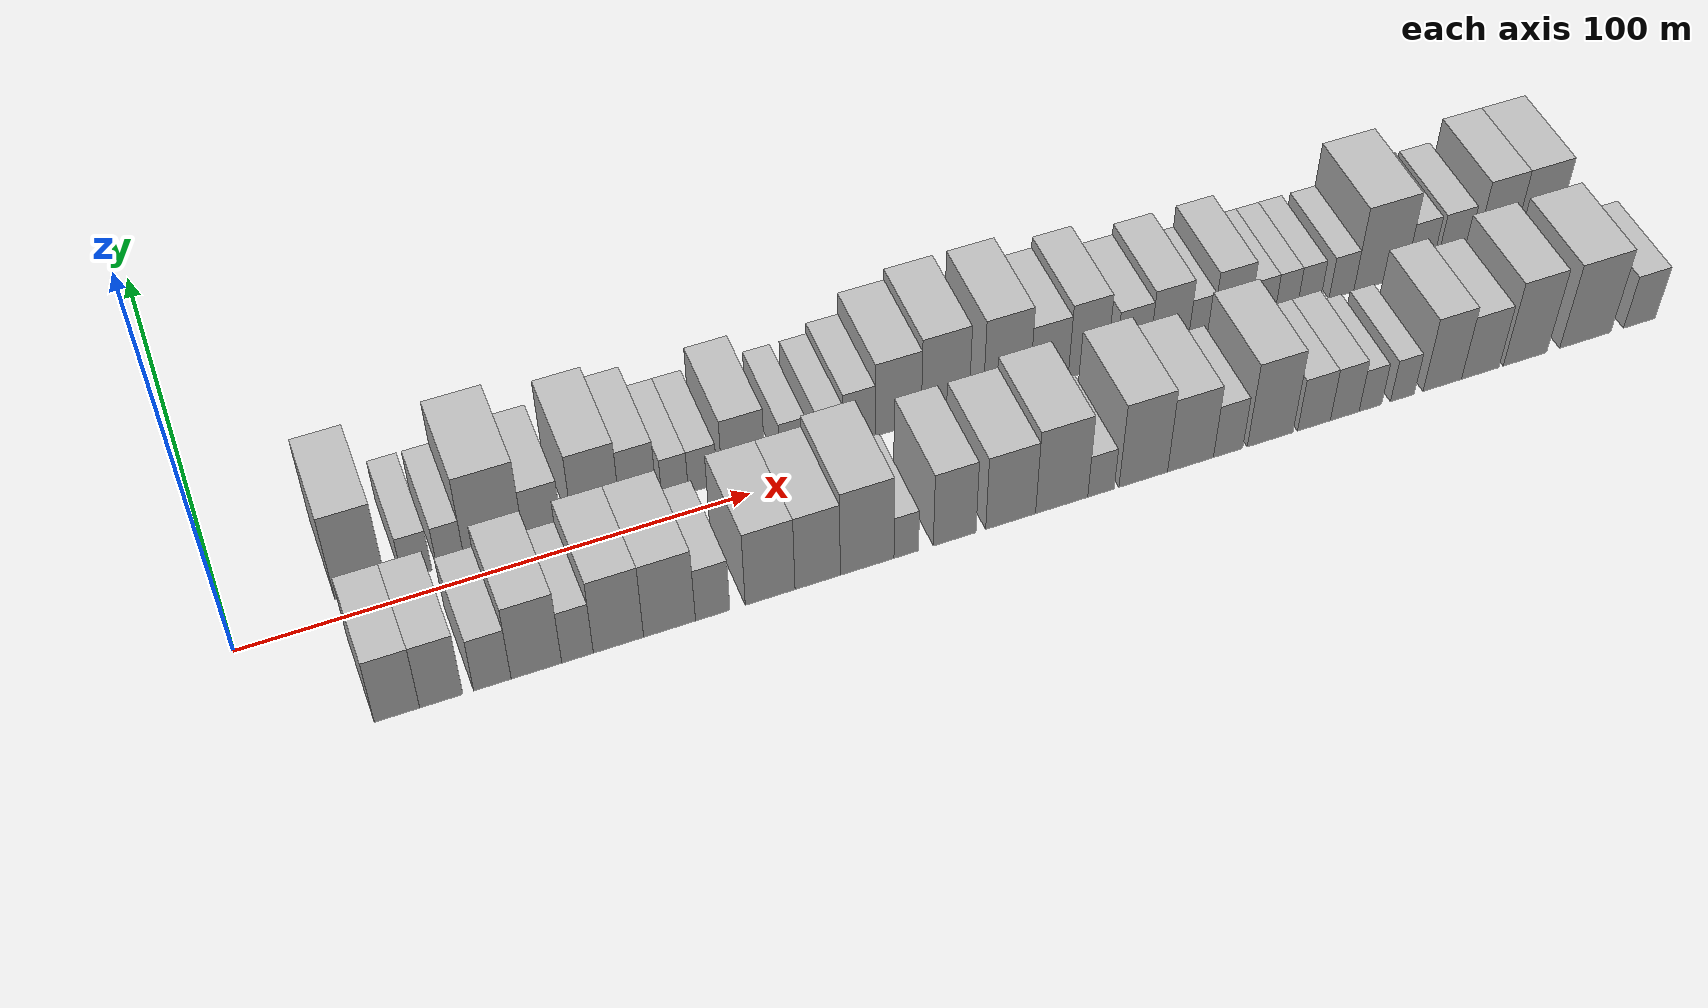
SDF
<sdf version="1.6">
 <world name="default">
  <scene>
   <sky><clouds><speed>12</speed></clouds></sky>
   <ambient>0.4 0.4 0.4 1</ambient>
   <background>0.7 0.7 0.7 1</background>
   <shadows>1</shadows>
  </scene>
  <gravity>0 0 -9.8066</gravity>
  <magnetic_field>6e-06 2.3e-05 -4.2e-05</magnetic_field>
  <physics default="0" name="default_physics" type="ode">
   <ode>
    <solver>
     <type>quick</type>
     <iters>10</iters>
     <sor>1.0</sor>
     <use_dynamic_moi_rescaling>0</use_dynamic_moi_rescaling>
    </solver>
    <constraints>
     <cfm>0</cfm>
     <erp>0.2</erp>
     <contact_max_correcting_vel>100</contact_max_correcting_vel>
     <contact_surface_layer>0.001</contact_surface_layer>
    </constraints>
   </ode>
   <max_step_size>0.004</max_step_size>
   <real_time_factor>1</real_time_factor>
   <real_time_update_rate>250</real_time_update_rate>
  </physics>
  <light name="sun" type="directional">
   <pose>0 0 10 0 0 0</pose>
   <diffuse>0.8 0.8 0.8 1</diffuse>
   <specular>0.2 0.2 0.2 1</specular>
   <attenuation>
    <range>1000</range>
    <constant>0.9</constant>
    <linear>0.01</linear>
    <quadratic>0.001</quadratic>
   </attenuation>
   <direction>-0.5 0.1 -0.9</direction>
  </light>
  <model name="building_1">
   <static>1</static>
   <pose>24.8874 14.5000 0 0.000000 0.000000 1.570796</pose>
   <link name="link">
    <pose>0 0 12.00 0 0 0</pose>
    <collision name="collision"><geometry><box><size>20.0000 9.7747 24.0000</size></box></geometry></collision>
    <visual name="visual">
     <cast_shadows>0</cast_shadows>
     <geometry><box><size>20.0000 9.7747 24.0000</size></box></geometry>
     <material>
      <script>
       <uri>model://HANNAS_wall/materials/scripts</uri>
       <uri>model://HANNAS_wall/materials/textures</uri>
       <name>vrc/HANNAS_wall</name>
      </script>
     </material>
    </visual>
   </link>
  </model>
  <model name="building_2">
   <static>1</static>
   <pose>35.6355 14.5000 0 0.000000 0.000000 1.570796</pose>
   <link name="link">
    <pose>0 0 6.00 0 0 0</pose>
    <collision name="collision"><geometry><box><size>20.0000 5.7216 12.0000</size></box></geometry></collision>
    <visual name="visual">
     <cast_shadows>0</cast_shadows>
     <geometry><box><size>20.0000 5.7216 12.0000</size></box></geometry>
     <material>
      <script>
       <uri>model://HANNAS_wall/materials/scripts</uri>
       <uri>model://HANNAS_wall/materials/textures</uri>
       <name>vrc/HANNAS_wall</name>
      </script>
     </material>
    </visual>
   </link>
  </model>
  <model name="building_3">
   <static>1</static>
   <pose>42.1406 14.5000 0 0.000000 0.000000 1.570796</pose>
   <link name="link">
    <pose>0 0 6.00 0 0 0</pose>
    <collision name="collision"><geometry><box><size>20.0000 5.2885 12.0000</size></box></geometry></collision>
    <visual name="visual">
     <cast_shadows>0</cast_shadows>
     <geometry><box><size>20.0000 5.2885 12.0000</size></box></geometry>
     <material>
      <script>
       <uri>model://HANNAS_wall/materials/scripts</uri>
       <uri>model://HANNAS_wall/materials/textures</uri>
       <name>vrc/HANNAS_wall</name>
      </script>
     </material>
    </visual>
   </link>
  </model>
  <model name="building_4">
   <static>1</static>
   <pose>50.5734 14.5000 0 0.000000 0.000000 1.570796</pose>
   <link name="link">
    <pose>0 0 12.00 0 0 0</pose>
    <collision name="collision"><geometry><box><size>20.0000 11.5771 24.0000</size></box></geometry></collision>
    <visual name="visual">
     <cast_shadows>0</cast_shadows>
     <geometry><box><size>20.0000 11.5771 24.0000</size></box></geometry>
     <material>
      <script>
       <uri>model://HANNAS_wall/materials/scripts</uri>
       <uri>model://HANNAS_wall/materials/textures</uri>
       <name>vrc/HANNAS_wall</name>
      </script>
     </material>
    </visual>
   </link>
  </model>
  <model name="building_5">
   <static>1</static>
   <pose>60.1083 14.5000 0 0.000000 0.000000 1.570796</pose>
   <link name="link">
    <pose>0 0 7.50 0 0 0</pose>
    <collision name="collision"><geometry><box><size>20.0000 7.4927 15.0000</size></box></geometry></collision>
    <visual name="visual">
     <cast_shadows>0</cast_shadows>
     <geometry><box><size>20.0000 7.4927 15.0000</size></box></geometry>
     <material>
      <script>
       <uri>model://HANNAS_wall/materials/scripts</uri>
       <uri>model://HANNAS_wall/materials/textures</uri>
       <name>vrc/HANNAS_wall</name>
      </script>
     </material>
    </visual>
   </link>
  </model>
  <model name="building_6">
   <static>1</static>
   <pose>70.6198 14.5000 0 0.000000 0.000000 1.570796</pose>
   <link name="link">
    <pose>0 0 10.50 0 0 0</pose>
    <collision name="collision"><geometry><box><size>20.0000 9.5303 21.0000</size></box></geometry></collision>
    <visual name="visual">
     <cast_shadows>0</cast_shadows>
     <geometry><box><size>20.0000 9.5303 21.0000</size></box></geometry>
     <material>
      <script>
       <uri>model://HANNAS_wall/materials/scripts</uri>
       <uri>model://HANNAS_wall/materials/textures</uri>
       <name>vrc/HANNAS_wall</name>
      </script>
     </material>
    </visual>
   </link>
  </model>
  <model name="building_7">
   <static>1</static>
   <pose>79.0629 14.5000 0 0.000000 0.000000 1.570796</pose>
   <link name="link">
    <pose>0 0 9.00 0 0 0</pose>
    <collision name="collision"><geometry><box><size>20.0000 7.3559 18.0000</size></box></geometry></collision>
    <visual name="visual">
     <cast_shadows>0</cast_shadows>
     <geometry><box><size>20.0000 7.3559 18.0000</size></box></geometry>
     <material>
      <script>
       <uri>model://HANNAS_wall/materials/scripts</uri>
       <uri>model://HANNAS_wall/materials/textures</uri>
       <name>vrc/HANNAS_wall</name>
      </script>
     </material>
    </visual>
   </link>
  </model>
  <model name="building_8">
   <static>1</static>
   <pose>86.3998 14.5000 0 0.000000 0.000000 1.570796</pose>
   <link name="link">
    <pose>0 0 6.00 0 0 0</pose>
    <collision name="collision"><geometry><box><size>20.0000 5.3179 12.0000</size></box></geometry></collision>
    <visual name="visual">
     <cast_shadows>0</cast_shadows>
     <geometry><box><size>20.0000 5.3179 12.0000</size></box></geometry>
     <material>
      <script>
       <uri>model://HANNAS_wall/materials/scripts</uri>
       <uri>model://HANNAS_wall/materials/textures</uri>
       <name>vrc/HANNAS_wall</name>
      </script>
     </material>
    </visual>
   </link>
  </model>
  <model name="building_9">
   <static>1</static>
   <pose>91.9823 14.5000 0 0.000000 0.000000 1.570796</pose>
   <link name="link">
    <pose>0 0 6.00 0 0 0</pose>
    <collision name="collision"><geometry><box><size>20.0000 5.8471 12.0000</size></box></geometry></collision>
    <visual name="visual">
     <cast_shadows>0</cast_shadows>
     <geometry><box><size>20.0000 5.8471 12.0000</size></box></geometry>
     <material>
      <script>
       <uri>model://HANNAS_wall/materials/scripts</uri>
       <uri>model://HANNAS_wall/materials/textures</uri>
       <name>vrc/HANNAS_wall</name>
      </script>
     </material>
    </visual>
   </link>
  </model>
  <model name="building_10">
   <static>1</static>
   <pose>100.2725 14.5000 0 0.000000 0.000000 1.570796</pose>
   <link name="link">
    <pose>0 0 9.00 0 0 0</pose>
    <collision name="collision"><geometry><box><size>20.0000 8.7333 18.0000</size></box></geometry></collision>
    <visual name="visual">
     <cast_shadows>0</cast_shadows>
     <geometry><box><size>20.0000 8.7333 18.0000</size></box></geometry>
     <material>
      <script>
       <uri>model://HANNAS_wall/materials/scripts</uri>
       <uri>model://HANNAS_wall/materials/textures</uri>
       <name>vrc/HANNAS_wall</name>
      </script>
     </material>
    </visual>
   </link>
  </model>
  <model name="building_11">
   <static>1</static>
   <pose>110.4172 14.5000 0 0.000000 0.000000 1.570796</pose>
   <link name="link">
    <pose>0 0 6.00 0 0 0</pose>
    <collision name="collision"><geometry><box><size>20.0000 5.5562 12.0000</size></box></geometry></collision>
    <visual name="visual">
     <cast_shadows>0</cast_shadows>
     <geometry><box><size>20.0000 5.5562 12.0000</size></box></geometry>
     <material>
      <script>
       <uri>model://HANNAS_wall/materials/scripts</uri>
       <uri>model://HANNAS_wall/materials/textures</uri>
       <name>vrc/HANNAS_wall</name>
      </script>
     </material>
    </visual>
   </link>
  </model>
  <model name="building_12">
   <static>1</static>
   <pose>118.0093 14.5000 0 0.000000 0.000000 1.570796</pose>
   <link name="link">
    <pose>0 0 6.00 0 0 0</pose>
    <collision name="collision"><geometry><box><size>20.0000 5.6280 12.0000</size></box></geometry></collision>
    <visual name="visual">
     <cast_shadows>0</cast_shadows>
     <geometry><box><size>20.0000 5.6280 12.0000</size></box></geometry>
     <material>
      <script>
       <uri>model://HANNAS_wall/materials/scripts</uri>
       <uri>model://HANNAS_wall/materials/textures</uri>
       <name>vrc/HANNAS_wall</name>
      </script>
     </material>
    </visual>
   </link>
  </model>
  <model name="building_13">
   <static>1</static>
   <pose>124.1674 14.5000 0 0.000000 0.000000 1.570796</pose>
   <link name="link">
    <pose>0 0 7.50 0 0 0</pose>
    <collision name="collision"><geometry><box><size>20.0000 6.6881 15.0000</size></box></geometry></collision>
    <visual name="visual">
     <cast_shadows>0</cast_shadows>
     <geometry><box><size>20.0000 6.6881 15.0000</size></box></geometry>
     <material>
      <script>
       <uri>model://HANNAS_wall/materials/scripts</uri>
       <uri>model://HANNAS_wall/materials/textures</uri>
       <name>vrc/HANNAS_wall</name>
      </script>
     </material>
    </visual>
   </link>
  </model>
  <model name="building_14">
   <static>1</static>
   <pose>132.3403 14.5000 0 0.000000 0.000000 1.570796</pose>
   <link name="link">
    <pose>0 0 10.50 0 0 0</pose>
    <collision name="collision"><geometry><box><size>20.0000 9.6578 21.0000</size></box></geometry></collision>
    <visual name="visual">
     <cast_shadows>0</cast_shadows>
     <geometry><box><size>20.0000 9.6578 21.0000</size></box></geometry>
     <material>
      <script>
       <uri>model://HANNAS_wall/materials/scripts</uri>
       <uri>model://HANNAS_wall/materials/textures</uri>
       <name>vrc/HANNAS_wall</name>
      </script>
     </material>
    </visual>
   </link>
  </model>
  <model name="building_15">
   <static>1</static>
   <pose>142.2550 14.5000 0 0.000000 0.000000 1.570796</pose>
   <link name="link">
    <pose>0 0 12.00 0 0 0</pose>
    <collision name="collision"><geometry><box><size>20.0000 10.1715 24.0000</size></box></geometry></collision>
    <visual name="visual">
     <cast_shadows>0</cast_shadows>
     <geometry><box><size>20.0000 10.1715 24.0000</size></box></geometry>
     <material>
      <script>
       <uri>model://HANNAS_wall/materials/scripts</uri>
       <uri>model://HANNAS_wall/materials/textures</uri>
       <name>vrc/HANNAS_wall</name>
      </script>
     </material>
    </visual>
   </link>
  </model>
  <model name="building_16">
   <static>1</static>
   <pose>155.3684 14.5000 0 0.000000 0.000000 1.570796</pose>
   <link name="link">
    <pose>0 0 12.00 0 0 0</pose>
    <collision name="collision"><geometry><box><size>20.0000 10.0553 24.0000</size></box></geometry></collision>
    <visual name="visual">
     <cast_shadows>0</cast_shadows>
     <geometry><box><size>20.0000 10.0553 24.0000</size></box></geometry>
     <material>
      <script>
       <uri>model://HANNAS_wall/materials/scripts</uri>
       <uri>model://HANNAS_wall/materials/textures</uri>
       <name>vrc/HANNAS_wall</name>
      </script>
     </material>
    </visual>
   </link>
  </model>
  <model name="building_17">
   <static>1</static>
   <pose>164.5696 14.5000 0 0.000000 0.000000 1.570796</pose>
   <link name="link">
    <pose>0 0 9.00 0 0 0</pose>
    <collision name="collision"><geometry><box><size>20.0000 8.3471 18.0000</size></box></geometry></collision>
    <visual name="visual">
     <cast_shadows>0</cast_shadows>
     <geometry><box><size>20.0000 8.3471 18.0000</size></box></geometry>
     <material>
      <script>
       <uri>model://HANNAS_wall/materials/scripts</uri>
       <uri>model://HANNAS_wall/materials/textures</uri>
       <name>vrc/HANNAS_wall</name>
      </script>
     </material>
    </visual>
   </link>
  </model>
  <model name="building_18">
   <static>1</static>
   <pose>172.9722 14.5000 0 0.000000 0.000000 1.570796</pose>
   <link name="link">
    <pose>0 0 10.50 0 0 0</pose>
    <collision name="collision"><geometry><box><size>20.0000 8.4581 21.0000</size></box></geometry></collision>
    <visual name="visual">
     <cast_shadows>0</cast_shadows>
     <geometry><box><size>20.0000 8.4581 21.0000</size></box></geometry>
     <material>
      <script>
       <uri>model://HANNAS_wall/materials/scripts</uri>
       <uri>model://HANNAS_wall/materials/textures</uri>
       <name>vrc/HANNAS_wall</name>
      </script>
     </material>
    </visual>
   </link>
  </model>
  <model name="building_19">
   <static>1</static>
   <pose>182.9234 14.5000 0 0.000000 0.000000 1.570796</pose>
   <link name="link">
    <pose>0 0 7.50 0 0 0</pose>
    <collision name="collision"><geometry><box><size>20.0000 7.4443 15.0000</size></box></geometry></collision>
    <visual name="visual">
     <cast_shadows>0</cast_shadows>
     <geometry><box><size>20.0000 7.4443 15.0000</size></box></geometry>
     <material>
      <script>
       <uri>model://HANNAS_wall/materials/scripts</uri>
       <uri>model://HANNAS_wall/materials/textures</uri>
       <name>vrc/HANNAS_wall</name>
      </script>
     </material>
    </visual>
   </link>
  </model>
  <model name="building_20">
   <static>1</static>
   <pose>190.9403 14.5000 0 0.000000 0.000000 1.570796</pose>
   <link name="link">
    <pose>0 0 9.00 0 0 0</pose>
    <collision name="collision"><geometry><box><size>20.0000 8.5895 18.0000</size></box></geometry></collision>
    <visual name="visual">
     <cast_shadows>0</cast_shadows>
     <geometry><box><size>20.0000 8.5895 18.0000</size></box></geometry>
     <material>
      <script>
       <uri>model://HANNAS_wall/materials/scripts</uri>
       <uri>model://HANNAS_wall/materials/textures</uri>
       <name>vrc/HANNAS_wall</name>
      </script>
     </material>
    </visual>
   </link>
  </model>
  <model name="building_21">
   <static>1</static>
   <pose>197.8930 14.5000 0 0.000000 0.000000 1.570796</pose>
   <link name="link">
    <pose>0 0 6.00 0 0 0</pose>
    <collision name="collision"><geometry><box><size>20.0000 5.3159 12.0000</size></box></geometry></collision>
    <visual name="visual">
     <cast_shadows>0</cast_shadows>
     <geometry><box><size>20.0000 5.3159 12.0000</size></box></geometry>
     <material>
      <script>
       <uri>model://HANNAS_wall/materials/scripts</uri>
       <uri>model://HANNAS_wall/materials/textures</uri>
       <name>vrc/HANNAS_wall</name>
      </script>
     </material>
    </visual>
   </link>
  </model>
  <model name="building_22">
   <static>1</static>
   <pose>204.6842 14.5000 0 0.000000 0.000000 1.570796</pose>
   <link name="link">
    <pose>0 0 9.00 0 0 0</pose>
    <collision name="collision"><geometry><box><size>20.0000 8.2665 18.0000</size></box></geometry></collision>
    <visual name="visual">
     <cast_shadows>0</cast_shadows>
     <geometry><box><size>20.0000 8.2665 18.0000</size></box></geometry>
     <material>
      <script>
       <uri>model://HANNAS_wall/materials/scripts</uri>
       <uri>model://HANNAS_wall/materials/textures</uri>
       <name>vrc/HANNAS_wall</name>
      </script>
     </material>
    </visual>
   </link>
  </model>
  <model name="building_23">
   <static>1</static>
   <pose>211.7679 14.5000 0 0.000000 0.000000 1.570796</pose>
   <link name="link">
    <pose>0 0 6.00 0 0 0</pose>
    <collision name="collision"><geometry><box><size>20.0000 5.9009 12.0000</size></box></geometry></collision>
    <visual name="visual">
     <cast_shadows>0</cast_shadows>
     <geometry><box><size>20.0000 5.9009 12.0000</size></box></geometry>
     <material>
      <script>
       <uri>model://HANNAS_wall/materials/scripts</uri>
       <uri>model://HANNAS_wall/materials/textures</uri>
       <name>vrc/HANNAS_wall</name>
      </script>
     </material>
    </visual>
   </link>
  </model>
  <model name="building_24">
   <static>1</static>
   <pose>217.2860 14.5000 0 0.000000 0.000000 1.570796</pose>
   <link name="link">
    <pose>0 0 6.00 0 0 0</pose>
    <collision name="collision"><geometry><box><size>20.0000 5.1353 12.0000</size></box></geometry></collision>
    <visual name="visual">
     <cast_shadows>0</cast_shadows>
     <geometry><box><size>20.0000 5.1353 12.0000</size></box></geometry>
     <material>
      <script>
       <uri>model://HANNAS_wall/materials/scripts</uri>
       <uri>model://HANNAS_wall/materials/textures</uri>
       <name>vrc/HANNAS_wall</name>
      </script>
     </material>
    </visual>
   </link>
  </model>
  <model name="building_25">
   <static>1</static>
   <pose>222.5215 14.5000 0 0.000000 0.000000 1.570796</pose>
   <link name="link">
    <pose>0 0 6.00 0 0 0</pose>
    <collision name="collision"><geometry><box><size>20.0000 5.3357 12.0000</size></box></geometry></collision>
    <visual name="visual">
     <cast_shadows>0</cast_shadows>
     <geometry><box><size>20.0000 5.3357 12.0000</size></box></geometry>
     <material>
      <script>
       <uri>model://HANNAS_wall/materials/scripts</uri>
       <uri>model://HANNAS_wall/materials/textures</uri>
       <name>vrc/HANNAS_wall</name>
      </script>
     </material>
    </visual>
   </link>
  </model>
  <model name="building_26">
   <static>1</static>
   <pose>230.0413 14.5000 0 0.000000 0.000000 1.570796</pose>
   <link name="link">
    <pose>0 0 6.00 0 0 0</pose>
    <collision name="collision"><geometry><box><size>20.0000 5.7038 12.0000</size></box></geometry></collision>
    <visual name="visual">
     <cast_shadows>0</cast_shadows>
     <geometry><box><size>20.0000 5.7038 12.0000</size></box></geometry>
     <material>
      <script>
       <uri>model://HANNAS_wall/materials/scripts</uri>
       <uri>model://HANNAS_wall/materials/textures</uri>
       <name>vrc/HANNAS_wall</name>
      </script>
     </material>
    </visual>
   </link>
  </model>
  <model name="building_27">
   <static>1</static>
   <pose>238.8898 14.5000 0 0.000000 0.000000 1.570796</pose>
   <link name="link">
    <pose>0 0 12.00 0 0 0</pose>
    <collision name="collision"><geometry><box><size>20.0000 11.9932 24.0000</size></box></geometry></collision>
    <visual name="visual">
     <cast_shadows>0</cast_shadows>
     <geometry><box><size>20.0000 11.9932 24.0000</size></box></geometry>
     <material>
      <script>
       <uri>model://HANNAS_wall/materials/scripts</uri>
       <uri>model://HANNAS_wall/materials/textures</uri>
       <name>vrc/HANNAS_wall</name>
      </script>
     </material>
    </visual>
   </link>
  </model>
  <model name="building_28">
   <static>1</static>
   <pose>247.9866 14.5000 0 0.000000 0.000000 1.570796</pose>
   <link name="link">
    <pose>0 0 7.50 0 0 0</pose>
    <collision name="collision"><geometry><box><size>20.0000 6.2003 15.0000</size></box></geometry></collision>
    <visual name="visual">
     <cast_shadows>0</cast_shadows>
     <geometry><box><size>20.0000 6.2003 15.0000</size></box></geometry>
     <material>
      <script>
       <uri>model://HANNAS_wall/materials/scripts</uri>
       <uri>model://HANNAS_wall/materials/textures</uri>
       <name>vrc/HANNAS_wall</name>
      </script>
     </material>
    </visual>
   </link>
  </model>
  <model name="building_29">
   <static>1</static>
   <pose>255.6470 14.5000 0 0.000000 0.000000 1.570796</pose>
   <link name="link">
    <pose>0 0 7.50 0 0 0</pose>
    <collision name="collision"><geometry><box><size>20.0000 7.1205 15.0000</size></box></geometry></collision>
    <visual name="visual">
     <cast_shadows>0</cast_shadows>
     <geometry><box><size>20.0000 7.1205 15.0000</size></box></geometry>
     <material>
      <script>
       <uri>model://HANNAS_wall/materials/scripts</uri>
       <uri>model://HANNAS_wall/materials/textures</uri>
       <name>vrc/HANNAS_wall</name>
      </script>
     </material>
    </visual>
   </link>
  </model>
  <model name="building_30">
   <static>1</static>
   <pose>265.8053 14.5000 0 0.000000 0.000000 1.570796</pose>
   <link name="link">
    <pose>0 0 10.50 0 0 0</pose>
    <collision name="collision"><geometry><box><size>20.0000 9.1960 21.0000</size></box></geometry></collision>
    <visual name="visual">
     <cast_shadows>0</cast_shadows>
     <geometry><box><size>20.0000 9.1960 21.0000</size></box></geometry>
     <material>
      <script>
       <uri>model://HANNAS_wall/materials/scripts</uri>
       <uri>model://HANNAS_wall/materials/textures</uri>
       <name>vrc/HANNAS_wall</name>
      </script>
     </material>
    </visual>
   </link>
  </model>
  <model name="building_31">
   <static>1</static>
   <pose>275.5494 14.5000 0 0.000000 0.000000 1.570796</pose>
   <link name="link">
    <pose>0 0 10.50 0 0 0</pose>
    <collision name="collision"><geometry><box><size>20.0000 10.2922 21.0000</size></box></geometry></collision>
    <visual name="visual">
     <cast_shadows>0</cast_shadows>
     <geometry><box><size>20.0000 10.2922 21.0000</size></box></geometry>
     <material>
      <script>
       <uri>model://HANNAS_wall/materials/scripts</uri>
       <uri>model://HANNAS_wall/materials/textures</uri>
       <name>vrc/HANNAS_wall</name>
      </script>
     </material>
    </visual>
   </link>
  </model>
  <model name="building_32">
   <static>1</static>
   <pose>24.1696 -14.5000 0 0.000000 0.000000 1.570796</pose>
   <link name="link">
    <pose>0 0 9.00 0 0 0</pose>
    <collision name="collision"><geometry><box><size>20.0000 8.3392 18.0000</size></box></geometry></collision>
    <visual name="visual">
     <cast_shadows>0</cast_shadows>
     <geometry><box><size>20.0000 8.3392 18.0000</size></box></geometry>
     <material>
      <script>
       <uri>model://HANNAS_wall/materials/scripts</uri>
       <uri>model://HANNAS_wall/materials/textures</uri>
       <name>vrc/HANNAS_wall</name>
      </script>
     </material>
    </visual>
   </link>
  </model>
  <model name="building_33">
   <static>1</static>
   <pose>32.3309 -14.5000 0 0.000000 0.000000 1.570796</pose>
   <link name="link">
    <pose>0 0 9.00 0 0 0</pose>
    <collision name="collision"><geometry><box><size>20.0000 7.9833 18.0000</size></box></geometry></collision>
    <visual name="visual">
     <cast_shadows>0</cast_shadows>
     <geometry><box><size>20.0000 7.9833 18.0000</size></box></geometry>
     <material>
      <script>
       <uri>model://HANNAS_wall/materials/scripts</uri>
       <uri>model://HANNAS_wall/materials/textures</uri>
       <name>vrc/HANNAS_wall</name>
      </script>
     </material>
    </visual>
   </link>
  </model>
  <model name="building_34">
   <static>1</static>
   <pose>41.8273 -14.5000 0 0.000000 0.000000 1.570796</pose>
   <link name="link">
    <pose>0 0 7.50 0 0 0</pose>
    <collision name="collision"><geometry><box><size>20.0000 7.0095 15.0000</size></box></geometry></collision>
    <visual name="visual">
     <cast_shadows>0</cast_shadows>
     <geometry><box><size>20.0000 7.0095 15.0000</size></box></geometry>
     <material>
      <script>
       <uri>model://HANNAS_wall/materials/scripts</uri>
       <uri>model://HANNAS_wall/materials/textures</uri>
       <name>vrc/HANNAS_wall</name>
      </script>
     </material>
    </visual>
   </link>
  </model>
  <model name="building_35">
   <static>1</static>
   <pose>50.0957 -14.5000 0 0.000000 0.000000 1.570796</pose>
   <link name="link">
    <pose>0 0 10.50 0 0 0</pose>
    <collision name="collision"><geometry><box><size>20.0000 9.5274 21.0000</size></box></geometry></collision>
    <visual name="visual">
     <cast_shadows>0</cast_shadows>
     <geometry><box><size>20.0000 9.5274 21.0000</size></box></geometry>
     <material>
      <script>
       <uri>model://HANNAS_wall/materials/scripts</uri>
       <uri>model://HANNAS_wall/materials/textures</uri>
       <name>vrc/HANNAS_wall</name>
      </script>
     </material>
    </visual>
   </link>
  </model>
  <model name="building_36">
   <static>1</static>
   <pose>57.8604 -14.5000 0 0.000000 0.000000 1.570796</pose>
   <link name="link">
    <pose>0 0 7.50 0 0 0</pose>
    <collision name="collision"><geometry><box><size>20.0000 6.0020 15.0000</size></box></geometry></collision>
    <visual name="visual">
     <cast_shadows>0</cast_shadows>
     <geometry><box><size>20.0000 6.0020 15.0000</size></box></geometry>
     <material>
      <script>
       <uri>model://HANNAS_wall/materials/scripts</uri>
       <uri>model://HANNAS_wall/materials/textures</uri>
       <name>vrc/HANNAS_wall</name>
      </script>
     </material>
    </visual>
   </link>
  </model>
  <model name="building_37">
   <static>1</static>
   <pose>65.6744 -14.5000 0 0.000000 0.000000 1.570796</pose>
   <link name="link">
    <pose>0 0 10.50 0 0 0</pose>
    <collision name="collision"><geometry><box><size>20.0000 9.6259 21.0000</size></box></geometry></collision>
    <visual name="visual">
     <cast_shadows>0</cast_shadows>
     <geometry><box><size>20.0000 9.6259 21.0000</size></box></geometry>
     <material>
      <script>
       <uri>model://HANNAS_wall/materials/scripts</uri>
       <uri>model://HANNAS_wall/materials/textures</uri>
       <name>vrc/HANNAS_wall</name>
      </script>
     </material>
    </visual>
   </link>
  </model>
  <model name="building_38">
   <static>1</static>
   <pose>75.4964 -14.5000 0 0.000000 0.000000 1.570796</pose>
   <link name="link">
    <pose>0 0 10.50 0 0 0</pose>
    <collision name="collision"><geometry><box><size>20.0000 10.0183 21.0000</size></box></geometry></collision>
    <visual name="visual">
     <cast_shadows>0</cast_shadows>
     <geometry><box><size>20.0000 10.0183 21.0000</size></box></geometry>
     <material>
      <script>
       <uri>model://HANNAS_wall/materials/scripts</uri>
       <uri>model://HANNAS_wall/materials/textures</uri>
       <name>vrc/HANNAS_wall</name>
      </script>
     </material>
    </visual>
   </link>
  </model>
  <model name="building_39">
   <static>1</static>
   <pose>83.8526 -14.5000 0 0.000000 0.000000 1.570796</pose>
   <link name="link">
    <pose>0 0 7.50 0 0 0</pose>
    <collision name="collision"><geometry><box><size>20.0000 6.6940 15.0000</size></box></geometry></collision>
    <visual name="visual">
     <cast_shadows>0</cast_shadows>
     <geometry><box><size>20.0000 6.6940 15.0000</size></box></geometry>
     <material>
      <script>
       <uri>model://HANNAS_wall/materials/scripts</uri>
       <uri>model://HANNAS_wall/materials/textures</uri>
       <name>vrc/HANNAS_wall</name>
      </script>
     </material>
    </visual>
   </link>
  </model>
  <model name="building_40">
   <static>1</static>
   <pose>95.1061 -14.5000 0 0.000000 0.000000 1.570796</pose>
   <link name="link">
    <pose>0 0 10.50 0 0 0</pose>
    <collision name="collision"><geometry><box><size>20.0000 9.8131 21.0000</size></box></geometry></collision>
    <visual name="visual">
     <cast_shadows>0</cast_shadows>
     <geometry><box><size>20.0000 9.8131 21.0000</size></box></geometry>
     <material>
      <script>
       <uri>model://HANNAS_wall/materials/scripts</uri>
       <uri>model://HANNAS_wall/materials/textures</uri>
       <name>vrc/HANNAS_wall</name>
      </script>
     </material>
    </visual>
   </link>
  </model>
  <model name="building_41">
   <static>1</static>
   <pose>104.5219 -14.5000 0 0.000000 0.000000 1.570796</pose>
   <link name="link">
    <pose>0 0 10.50 0 0 0</pose>
    <collision name="collision"><geometry><box><size>20.0000 9.0184 21.0000</size></box></geometry></collision>
    <visual name="visual">
     <cast_shadows>0</cast_shadows>
     <geometry><box><size>20.0000 9.0184 21.0000</size></box></geometry>
     <material>
      <script>
       <uri>model://HANNAS_wall/materials/scripts</uri>
       <uri>model://HANNAS_wall/materials/textures</uri>
       <name>vrc/HANNAS_wall</name>
      </script>
     </material>
    </visual>
   </link>
  </model>
  <model name="building_42">
   <static>1</static>
   <pose>114.4118 -14.5000 0 0.000000 0.000000 1.570796</pose>
   <link name="link">
    <pose>0 0 12.00 0 0 0</pose>
    <collision name="collision"><geometry><box><size>20.0000 10.7613 24.0000</size></box></geometry></collision>
    <visual name="visual">
     <cast_shadows>0</cast_shadows>
     <geometry><box><size>20.0000 10.7613 24.0000</size></box></geometry>
     <material>
      <script>
       <uri>model://HANNAS_wall/materials/scripts</uri>
       <uri>model://HANNAS_wall/materials/textures</uri>
       <name>vrc/HANNAS_wall</name>
      </script>
     </material>
    </visual>
   </link>
  </model>
  <model name="building_43">
   <static>1</static>
   <pose>122.2793 -14.5000 0 0.000000 0.000000 1.570796</pose>
   <link name="link">
    <pose>0 0 6.00 0 0 0</pose>
    <collision name="collision"><geometry><box><size>20.0000 4.9738 12.0000</size></box></geometry></collision>
    <visual name="visual">
     <cast_shadows>0</cast_shadows>
     <geometry><box><size>20.0000 4.9738 12.0000</size></box></geometry>
     <material>
      <script>
       <uri>model://HANNAS_wall/materials/scripts</uri>
       <uri>model://HANNAS_wall/materials/textures</uri>
       <name>vrc/HANNAS_wall</name>
      </script>
     </material>
    </visual>
   </link>
  </model>
  <model name="building_44">
   <static>1</static>
   <pose>132.1275 -14.5000 0 0.000000 0.000000 1.570796</pose>
   <link name="link">
    <pose>0 0 10.50 0 0 0</pose>
    <collision name="collision"><geometry><box><size>20.0000 8.7226 21.0000</size></box></geometry></collision>
    <visual name="visual">
     <cast_shadows>0</cast_shadows>
     <geometry><box><size>20.0000 8.7226 21.0000</size></box></geometry>
     <material>
      <script>
       <uri>model://HANNAS_wall/materials/scripts</uri>
       <uri>model://HANNAS_wall/materials/textures</uri>
       <name>vrc/HANNAS_wall</name>
      </script>
     </material>
    </visual>
   </link>
  </model>
  <model name="building_45">
   <static>1</static>
   <pose>143.6480 -14.5000 0 0.000000 0.000000 1.570796</pose>
   <link name="link">
    <pose>0 0 10.50 0 0 0</pose>
    <collision name="collision"><geometry><box><size>20.0000 10.3184 21.0000</size></box></geometry></collision>
    <visual name="visual">
     <cast_shadows>0</cast_shadows>
     <geometry><box><size>20.0000 10.3184 21.0000</size></box></geometry>
     <material>
      <script>
       <uri>model://HANNAS_wall/materials/scripts</uri>
       <uri>model://HANNAS_wall/materials/textures</uri>
       <name>vrc/HANNAS_wall</name>
      </script>
     </material>
    </visual>
   </link>
  </model>
  <model name="building_46">
   <static>1</static>
   <pose>154.2561 -14.5000 0 0.000000 0.000000 1.570796</pose>
   <link name="link">
    <pose>0 0 12.00 0 0 0</pose>
    <collision name="collision"><geometry><box><size>20.0000 10.8979 24.0000</size></box></geometry></collision>
    <visual name="visual">
     <cast_shadows>0</cast_shadows>
     <geometry><box><size>20.0000 10.8979 24.0000</size></box></geometry>
     <material>
      <script>
       <uri>model://HANNAS_wall/materials/scripts</uri>
       <uri>model://HANNAS_wall/materials/textures</uri>
       <name>vrc/HANNAS_wall</name>
      </script>
     </material>
    </visual>
   </link>
  </model>
  <model name="building_47">
   <static>1</static>
   <pose>162.4929 -14.5000 0 0.000000 0.000000 1.570796</pose>
   <link name="link">
    <pose>0 0 6.00 0 0 0</pose>
    <collision name="collision"><geometry><box><size>20.0000 5.5758 12.0000</size></box></geometry></collision>
    <visual name="visual">
     <cast_shadows>0</cast_shadows>
     <geometry><box><size>20.0000 5.5758 12.0000</size></box></geometry>
     <material>
      <script>
       <uri>model://HANNAS_wall/materials/scripts</uri>
       <uri>model://HANNAS_wall/materials/textures</uri>
       <name>vrc/HANNAS_wall</name>
      </script>
     </material>
    </visual>
   </link>
  </model>
  <model name="building_48">
   <static>1</static>
   <pose>171.4511 -14.5000 0 0.000000 0.000000 1.570796</pose>
   <link name="link">
    <pose>0 0 12.00 0 0 0</pose>
    <collision name="collision"><geometry><box><size>20.0000 10.3407 24.0000</size></box></geometry></collision>
    <visual name="visual">
     <cast_shadows>0</cast_shadows>
     <geometry><box><size>20.0000 10.3407 24.0000</size></box></geometry>
     <material>
      <script>
       <uri>model://HANNAS_wall/materials/scripts</uri>
       <uri>model://HANNAS_wall/materials/textures</uri>
       <name>vrc/HANNAS_wall</name>
      </script>
     </material>
    </visual>
   </link>
  </model>
  <model name="building_49">
   <static>1</static>
   <pose>181.5410 -14.5000 0 0.000000 0.000000 1.570796</pose>
   <link name="link">
    <pose>0 0 10.50 0 0 0</pose>
    <collision name="collision"><geometry><box><size>20.0000 9.8392 21.0000</size></box></geometry></collision>
    <visual name="visual">
     <cast_shadows>0</cast_shadows>
     <geometry><box><size>20.0000 9.8392 21.0000</size></box></geometry>
     <material>
      <script>
       <uri>model://HANNAS_wall/materials/scripts</uri>
       <uri>model://HANNAS_wall/materials/textures</uri>
       <name>vrc/HANNAS_wall</name>
      </script>
     </material>
    </visual>
   </link>
  </model>
  <model name="building_50">
   <static>1</static>
   <pose>189.6280 -14.5000 0 0.000000 0.000000 1.570796</pose>
   <link name="link">
    <pose>0 0 7.50 0 0 0</pose>
    <collision name="collision"><geometry><box><size>20.0000 6.3347 15.0000</size></box></geometry></collision>
    <visual name="visual">
     <cast_shadows>0</cast_shadows>
     <geometry><box><size>20.0000 6.3347 15.0000</size></box></geometry>
     <material>
      <script>
       <uri>model://HANNAS_wall/materials/scripts</uri>
       <uri>model://HANNAS_wall/materials/textures</uri>
       <name>vrc/HANNAS_wall</name>
      </script>
     </material>
    </visual>
   </link>
  </model>
  <model name="building_51">
   <static>1</static>
   <pose>198.7721 -14.5000 0 0.000000 0.000000 1.570796</pose>
   <link name="link">
    <pose>0 0 12.00 0 0 0</pose>
    <collision name="collision"><geometry><box><size>20.0000 9.9535 24.0000</size></box></geometry></collision>
    <visual name="visual">
     <cast_shadows>0</cast_shadows>
     <geometry><box><size>20.0000 9.9535 24.0000</size></box></geometry>
     <material>
      <script>
       <uri>model://HANNAS_wall/materials/scripts</uri>
       <uri>model://HANNAS_wall/materials/textures</uri>
       <name>vrc/HANNAS_wall</name>
      </script>
     </material>
    </visual>
   </link>
  </model>
  <model name="building_52">
   <static>1</static>
   <pose>208.3526 -14.5000 0 0.000000 0.000000 1.570796</pose>
   <link name="link">
    <pose>0 0 7.50 0 0 0</pose>
    <collision name="collision"><geometry><box><size>20.0000 7.2076 15.0000</size></box></geometry></collision>
    <visual name="visual">
     <cast_shadows>0</cast_shadows>
     <geometry><box><size>20.0000 7.2076 15.0000</size></box></geometry>
     <material>
      <script>
       <uri>model://HANNAS_wall/materials/scripts</uri>
       <uri>model://HANNAS_wall/materials/textures</uri>
       <name>vrc/HANNAS_wall</name>
      </script>
     </material>
    </visual>
   </link>
  </model>
  <model name="building_53">
   <static>1</static>
   <pose>215.1398 -14.5000 0 0.000000 0.000000 1.570796</pose>
   <link name="link">
    <pose>0 0 7.50 0 0 0</pose>
    <collision name="collision"><geometry><box><size>20.0000 6.3668 15.0000</size></box></geometry></collision>
    <visual name="visual">
     <cast_shadows>0</cast_shadows>
     <geometry><box><size>20.0000 6.3668 15.0000</size></box></geometry>
     <material>
      <script>
       <uri>model://HANNAS_wall/materials/scripts</uri>
       <uri>model://HANNAS_wall/materials/textures</uri>
       <name>vrc/HANNAS_wall</name>
      </script>
     </material>
    </visual>
   </link>
  </model>
  <model name="building_54">
   <static>1</static>
   <pose>220.8345 -14.5000 0 0.000000 0.000000 1.570796</pose>
   <link name="link">
    <pose>0 0 6.00 0 0 0</pose>
    <collision name="collision"><geometry><box><size>20.0000 5.0224 12.0000</size></box></geometry></collision>
    <visual name="visual">
     <cast_shadows>0</cast_shadows>
     <geometry><box><size>20.0000 5.0224 12.0000</size></box></geometry>
     <material>
      <script>
       <uri>model://HANNAS_wall/materials/scripts</uri>
       <uri>model://HANNAS_wall/materials/textures</uri>
       <name>vrc/HANNAS_wall</name>
      </script>
     </material>
    </visual>
   </link>
  </model>
  <model name="building_55">
   <static>1</static>
   <pose>228.0047 -14.5000 0 0.000000 0.000000 1.570796</pose>
   <link name="link">
    <pose>0 0 6.00 0 0 0</pose>
    <collision name="collision"><geometry><box><size>20.0000 5.3181 12.0000</size></box></geometry></collision>
    <visual name="visual">
     <cast_shadows>0</cast_shadows>
     <geometry><box><size>20.0000 5.3181 12.0000</size></box></geometry>
     <material>
      <script>
       <uri>model://HANNAS_wall/materials/scripts</uri>
       <uri>model://HANNAS_wall/materials/textures</uri>
       <name>vrc/HANNAS_wall</name>
      </script>
     </material>
    </visual>
   </link>
  </model>
  <model name="building_56">
   <static>1</static>
   <pose>237.0008 -14.5000 0 0.000000 0.000000 1.570796</pose>
   <link name="link">
    <pose>0 0 10.50 0 0 0</pose>
    <collision name="collision"><geometry><box><size>20.0000 8.6741 21.0000</size></box></geometry></collision>
    <visual name="visual">
     <cast_shadows>0</cast_shadows>
     <geometry><box><size>20.0000 8.6741 21.0000</size></box></geometry>
     <material>
      <script>
       <uri>model://HANNAS_wall/materials/scripts</uri>
       <uri>model://HANNAS_wall/materials/textures</uri>
       <name>vrc/HANNAS_wall</name>
      </script>
     </material>
    </visual>
   </link>
  </model>
  <model name="building_57">
   <static>1</static>
   <pose>245.6069 -14.5000 0 0.000000 0.000000 1.570796</pose>
   <link name="link">
    <pose>0 0 9.00 0 0 0</pose>
    <collision name="collision"><geometry><box><size>20.0000 8.5382 18.0000</size></box></geometry></collision>
    <visual name="visual">
     <cast_shadows>0</cast_shadows>
     <geometry><box><size>20.0000 8.5382 18.0000</size></box></geometry>
     <material>
      <script>
       <uri>model://HANNAS_wall/materials/scripts</uri>
       <uri>model://HANNAS_wall/materials/textures</uri>
       <name>vrc/HANNAS_wall</name>
      </script>
     </material>
    </visual>
   </link>
  </model>
  <model name="building_58">
   <static>1</static>
   <pose>255.8739 -14.5000 0 0.000000 0.000000 1.570796</pose>
   <link name="link">
    <pose>0 0 12.00 0 0 0</pose>
    <collision name="collision"><geometry><box><size>20.0000 9.9957 24.0000</size></box></geometry></collision>
    <visual name="visual">
     <cast_shadows>0</cast_shadows>
     <geometry><box><size>20.0000 9.9957 24.0000</size></box></geometry>
     <material>
      <script>
       <uri>model://HANNAS_wall/materials/scripts</uri>
       <uri>model://HANNAS_wall/materials/textures</uri>
       <name>vrc/HANNAS_wall</name>
      </script>
     </material>
    </visual>
   </link>
  </model>
  <model name="building_59">
   <static>1</static>
   <pose>269.8247 -14.5000 0 0.000000 0.000000 1.570796</pose>
   <link name="link">
    <pose>0 0 12.00 0 0 0</pose>
    <collision name="collision"><geometry><box><size>20.0000 11.9060 24.0000</size></box></geometry></collision>
    <visual name="visual">
     <cast_shadows>0</cast_shadows>
     <geometry><box><size>20.0000 11.9060 24.0000</size></box></geometry>
     <material>
      <script>
       <uri>model://HANNAS_wall/materials/scripts</uri>
       <uri>model://HANNAS_wall/materials/textures</uri>
       <name>vrc/HANNAS_wall</name>
      </script>
     </material>
    </visual>
   </link>
  </model>
  <model name="building_60">
   <static>1</static>
   <pose>282.5133 -14.5000 0 0.000000 0.000000 1.570796</pose>
   <link name="link">
    <pose>0 0 7.50 0 0 0</pose>
    <collision name="collision"><geometry><box><size>20.0000 7.4712 15.0000</size></box></geometry></collision>
    <visual name="visual">
     <cast_shadows>0</cast_shadows>
     <geometry><box><size>20.0000 7.4712 15.0000</size></box></geometry>
     <material>
      <script>
       <uri>model://HANNAS_wall/materials/scripts</uri>
       <uri>model://HANNAS_wall/materials/textures</uri>
       <name>vrc/HANNAS_wall</name>
      </script>
     </material>
    </visual>
   </link>
  </model>
 </world>
</sdf>
